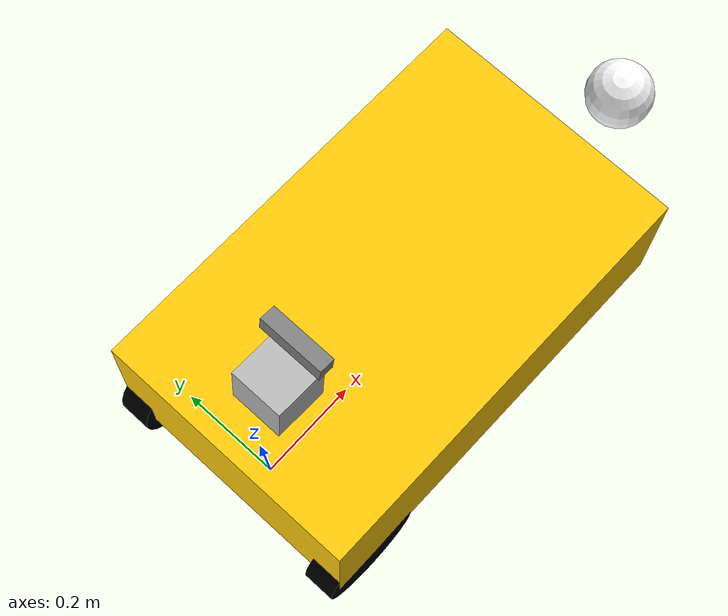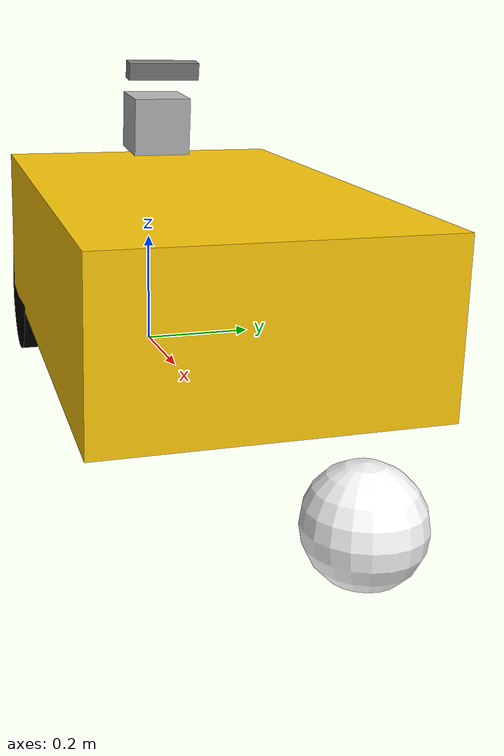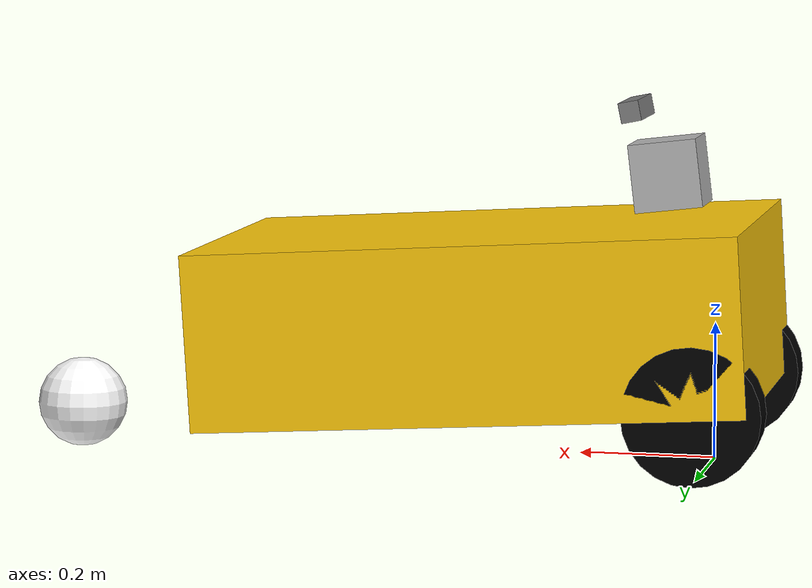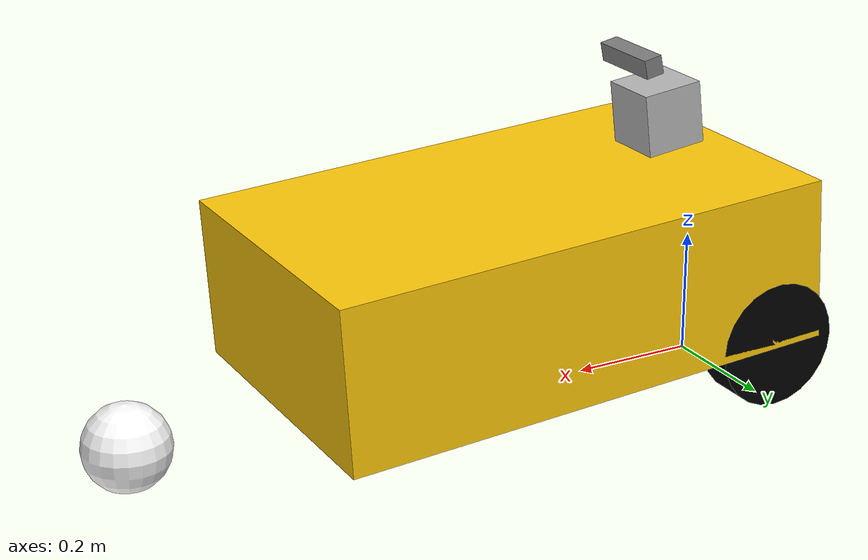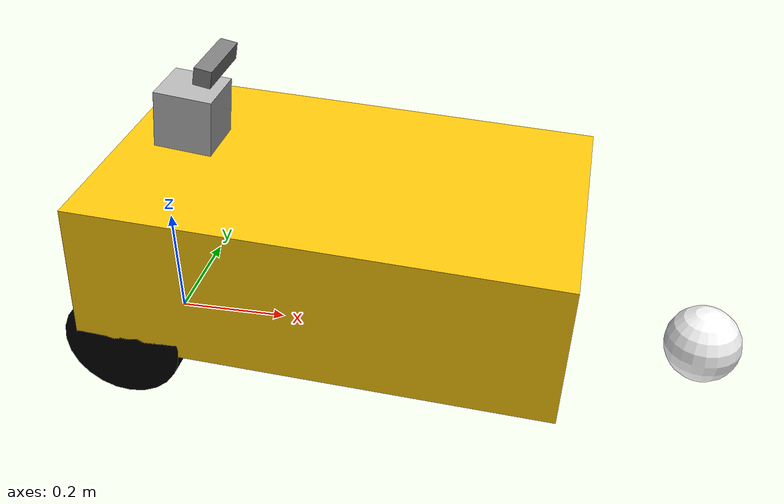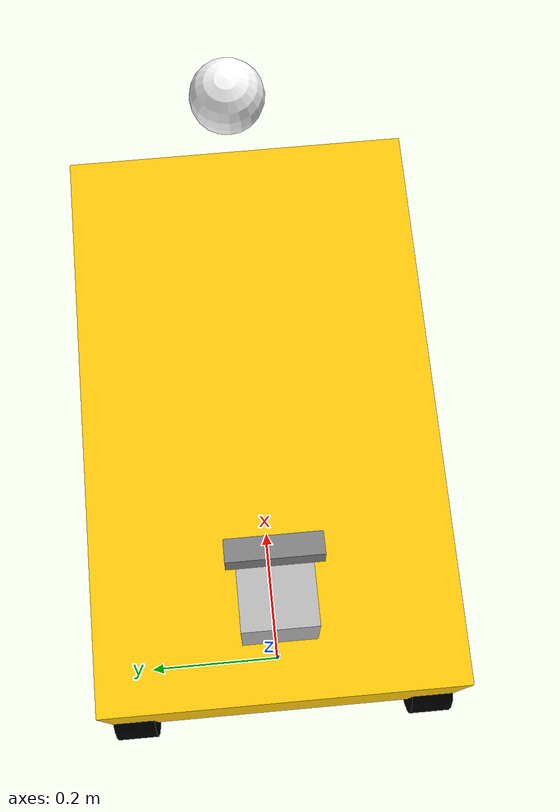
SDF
<?xml version="1.0" ?>
<sdf version="1.6">
    <model name='fejemis' canonical_link='base_link'>

        <link name="base_link">
        </link>

        <link name="base_footprint">
            <pose>0 0 0.1 0 0 0</pose>
            <inertial>
                <mass>5</mass>
                <inertia>
                    <ixx>0.273375</ixx>
                    <ixy>0</ixy>
                    <ixz>0</ixz>
                    <iyy>0.104167</iyy>
                    <iyz>0</iyz>
                    <izz>0.377542</izz>
                </inertia>
            </inertial>
        </link>

        <joint name="base_link_joint" type="fixed">
            <parent>base_link</parent>
            <child>base_footprint</child>
            <pose>0 0 0.1 0 0 0</pose>
        </joint>

        <link name="chassis">
            <pose>-0.1 0 0.1 0 0.06 0</pose>
            <inertial>
                <mass>5</mass>
                <inertia>
                    <ixx>0.273375</ixx>
                    <ixy>0</ixy>
                    <ixz>0</ixz>
                    <iyy>0.104167</iyy>
                    <iyz>0</iyz>
                    <izz>0.377542</izz>
                </inertia>
            </inertial>
            <visual name="chassis_visual">
                <pose>0.426 0 0.130 0 0 0</pose>
                <geometry>
                    <box>
                        <size>0.810 0.500 0.259</size>
                    </box>
                </geometry>
                <material>
                    <ambient>1.00 0.792 0.0400 1</ambient>
                    <diffuse>1.00 0.792 0.0400 1</diffuse>
                    <specular>1.00 0.792 0.0400 1</specular>
                </material>
            </visual>
        </link>

        <joint name="chassis_joint" type="fixed">
            <parent>base_footprint</parent>
            <child>chassis</child>
            <pose>-0.1 0 0 0 0 0</pose>
        </joint>

        <link name="left_wheel">
            <pose relative_to="base_footprint">0 0.220 0 -1.5708 0 0</pose>
            <inertial>
                <mass>0.5</mass>
                <inertia>
                    <ixx>0.0014</ixx>
                    <ixy>0</ixy>
                    <ixz>0</ixz>
                    <iyy>0.0014</iyy>
                    <iyz>0</iyz>
                    <izz>0.0025</izz>
                </inertia>
            </inertial>
            <visual name="left_wheel_visual">
                <geometry>
                    <cylinder>
                        <radius>0.1</radius>
                        <length>0.06</length>
                    </cylinder>
                </geometry>
                <material>
                    <ambient>0 0 0 1</ambient>
                    <diffuse>0 0 0 1</diffuse>
                    <specular>0 0 0 1</specular>
                </material>
            </visual>
            <collision name="left_wheel_collision">
                <geometry>
                    <cylinder>
                        <radius>0.1</radius>
                        <length>0.06</length>
                    </cylinder>
                </geometry>
            </collision>
        </link>

        <joint name='left_wheel_joint' type='revolute'>
            <pose relative_to='left_wheel'/>
            <parent>chassis</parent>
            <child>left_wheel</child>
            <axis>
                <xyz expressed_in='__model__'>0 1 0</xyz>
                <limit>
                    <lower>-100000000000</lower>
                    <upper>100000000000</upper>
                    <effort>100</effort>
                    <velocity>10.0</velocity>
                </limit>
            </axis>
        </joint>

        <link name="right_wheel">
            <pose relative_to="base_footprint">0 -0.220 0 -1.5708 0 0</pose>
            <inertial>
                <mass>0.5</mass>
                <inertia>
                    <ixx>0.0014</ixx>
                    <ixy>0</ixy>
                    <ixz>0</ixz>
                    <iyy>0.0014</iyy>
                    <iyz>0</iyz>
                    <izz>0.0025</izz>
                </inertia>
            </inertial>
            <visual name="right_wheel_visual">
                <geometry>
                    <cylinder>
                        <radius>0.1</radius>
                        <length>0.06</length>
                    </cylinder>
                </geometry>
                <material>
                    <ambient>0.0 0.0 0.0 1</ambient>
                    <diffuse>0.0 0.0 0.0 1</diffuse>
                    <specular>0.0 0.0 0.0 1</specular>
                </material>
            </visual>
            <collision name="right_wheel_collision">
                <geometry>
                    <cylinder>
                        <radius>0.1</radius>
                        <length>0.06</length>
                    </cylinder>
                </geometry>
            </collision>
        </link>

        <joint name='right_wheel_joint' type='revolute'>
            <pose relative_to='right_wheel'/>
            <parent>chassis</parent>
            <child>right_wheel</child>
            <axis>
                <xyz expressed_in='__model__'>0 1 0</xyz>
                <limit>
                    <lower>-100000000000</lower>
                    <upper>100000000000</upper>
                    <effort>100</effort>
                    <velocity>10.0</velocity>
                </limit>
            </axis>
        </joint>

        <link name="caster_wheel">
            <pose>0.970 0 0.05 0 0 0</pose>
            <inertial>
                <mass>1</mass>
                <inertia>
                    <ixx>0.000547</ixx>
                    <ixy>0</ixy>
                    <ixz>0</ixz>
                    <iyy>0.000547</iyy>
                    <iyz>0</iyz>
                    <izz>0.000547</izz>
                </inertia>
            </inertial>
            <visual name="caster_wheel_visual">
                <geometry>
                    <sphere>
                        <radius>0.0675</radius>
                    </sphere>
                </geometry>
                <material>
                    <ambient>1 1 1 1</ambient>
                    <diffuse>1 1 1 1</diffuse>
                    <specular>1 1 1 1</specular>
                </material>
            </visual>
            <collision name="caster_wheel_collision">
                <geometry>
                    <sphere>
                        <radius>0.0675</radius>
                    </sphere>
                </geometry>
            </collision>
        </link>

        <joint name="caster_wheel_joint" type="fixed">
            <parent>chassis</parent>
            <child>caster_wheel</child>
            <pose>0 0 0 0 0 0</pose>
        </joint>

        <link name="lidar_link">
            <pose relative_to='chassis'>0.15 0 0.329 0 0.06 0</pose>
            <inertial>
                <mass>0.1</mass>
                <inertia>
                    <ixx>0.000166667</ixx>
                    <iyy>0.000166667</iyy>
                    <izz>0.000166667</izz>
                </inertia>
            </inertial>
            <collision name="collision">
                <geometry>
                    <box>
                    <size>0.1 0.1 0.1</size>
                    </box>
                </geometry>
            </collision>
            <visual name="visual">
                <geometry>
                    <box>
                    <size>0.1 0.1 0.1</size>
                    </box>
                </geometry>
            </visual>

            <sensor name='gpu_lidar' type='gpu_lidar'>
                <topic>lidar</topic>
                <update_rate>10</update_rate>
                <lidar>
                    <scan>
                    <horizontal>
                        <samples>640</samples>
                        <resolution>1</resolution>
                        <min_angle>-1.396263</min_angle>
                        <max_angle>1.396263</max_angle>
                    </horizontal>
                    <vertical>
                        <samples>16</samples>
                        <resolution>1</resolution>
                        <min_angle>-0.261799</min_angle>
                        <max_angle>0.261799</max_angle>
                    </vertical>
                    </scan>
                    <range>
                    <min>0.08</min>
                    <max>10.0</max>
                    <resolution>0.01</resolution>
                    </range>
                </lidar>
                <alwaysOn>1</alwaysOn>
                <visualize>true</visualize>
            </sensor>
        </link>

        <joint name="laser_joint" type="fixed">
            <parent>chassis</parent>
            <child>lidar_link</child>
            <pose>0.07 0 0.429 0 0 0</pose>
        </joint>

        <!-- Camera sensor visual-->
        <link name="camera_link">
            <pose>0.12 0 0.513 0 0.2 0</pose>
            <visual name="camera_visual">
                <geometry>
                    <box>
                        <size>0.03 0.124 0.03</size>
                    </box>
                </geometry>
                <material>
                    <ambient>0.5 0.5 0.5 1</ambient>
                    <diffuse>0.5 0.5 0.5 1</diffuse>
                    <specular>0.5 0.5 0.5 1</specular>
                </material>
            </visual>
        </link>

        <joint name="camera_joint" type="fixed">
            <parent>chassis</parent>
            <child>camera_link</child>
        </joint>

        <plugin
            filename="gz-sim-diff-drive-system"
            name="gz::sim::systems::DiffDrive">
            <left_joint>left_wheel_joint</left_joint>
            <right_joint>right_wheel_joint</right_joint>
            <wheel_separation>0.440</wheel_separation>
            <wheel_radius>0.1</wheel_radius>
            <odom_publish_frequency>10</odom_publish_frequency>
            <topic>/model/fejemis/cmd_vel</topic>
            <odom_topic>/model/fejemis/odometry</odom_topic>
            <tf_topic>/model/fejemis/tf</tf_topic>
            <frame_id>/odom</frame_id>
            <child_frame_id>/base_link</child_frame_id>

        </plugin>

    </model>
</sdf>
